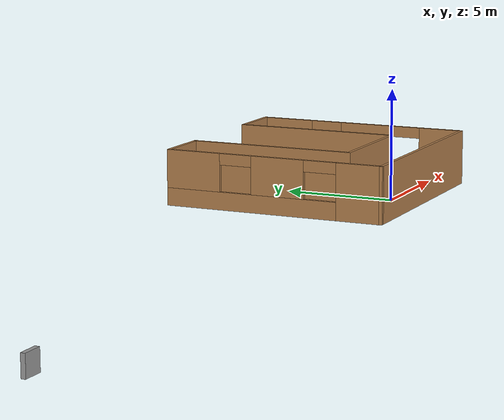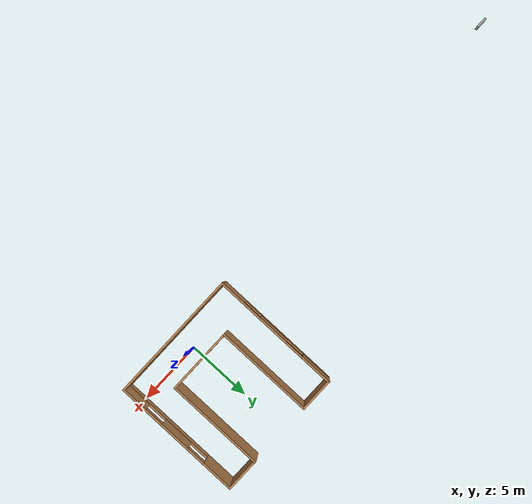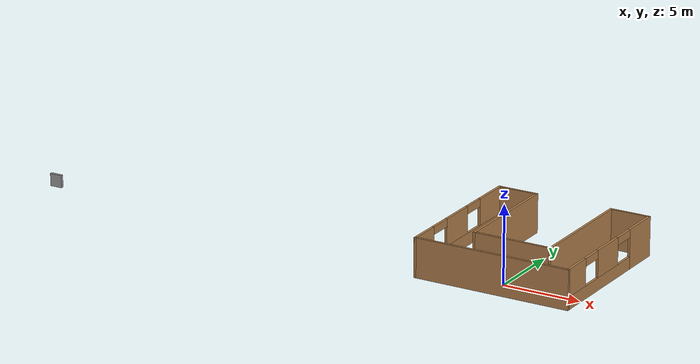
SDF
<?xml version='1.0'?>
<sdf version='1.6'>
  <model name='U-shape'>
    <pose frame=''>0 3.5 0 0 -0 0</pose>
    <link name='Wall_0'>
      <collision name='Wall_0_Collision'>
        <geometry>
          <box>
            <size>2.65 0.15 2.5</size>
          </box>
        </geometry>
        <pose frame=''>0 0 1.25 0 -0 0</pose>
      </collision>
      <visual name='Wall_0_Visual'>
        <pose frame=''>0 0 1.25 0 -0 0</pose>
        <geometry>
          <box>
            <size>2.65 0.15 2.5</size>
          </box>
        </geometry>
        <material>
          <script>
            <uri>file://media/materials/scripts/gazebo.material</uri>
            <name>Gazebo/Wood</name>
          </script>
          <ambient>1 1 1 1</ambient>
        </material>
        <meta>
          <layer>0</layer>
        </meta>
      </visual>
      <pose frame=''>-3.75 5 0 0 -0 0</pose>
    </link>
    <link name='Wall_1'>
      <collision name='Wall_1_Collision'>
        <geometry>
          <box>
            <size>7.65 0.15 2.5</size>
          </box>
        </geometry>
        <pose frame=''>0 0 1.25 0 -0 0</pose>
      </collision>
      <visual name='Wall_1_Visual'>
        <pose frame=''>0 0 1.25 0 -0 0</pose>
        <geometry>
          <box>
            <size>7.65 0.15 2.5</size>
          </box>
        </geometry>
        <material>
          <script>
            <uri>file://media/materials/scripts/gazebo.material</uri>
            <name>Gazebo/Wood</name>
          </script>
          <ambient>1 1 1 1</ambient>
        </material>
        <meta>
          <layer>0</layer>
        </meta>
      </visual>
      <pose frame=''>-2.5 1.25 0 0 0 -1.5708</pose>
    </link>
    <link name='Wall_2'>
      <collision name='Wall_2_Collision'>
        <geometry>
          <box>
            <size>5.15 0.15 2.5</size>
          </box>
        </geometry>
        <pose frame=''>0 0 1.25 0 -0 0</pose>
      </collision>
      <visual name='Wall_2_Visual'>
        <pose frame=''>0 0 1.25 0 -0 0</pose>
        <geometry>
          <box>
            <size>5.15 0.15 2.5</size>
          </box>
        </geometry>
        <material>
          <script>
            <uri>file://media/materials/scripts/gazebo.material</uri>
            <name>Gazebo/Wood</name>
          </script>
          <ambient>1 1 1 1</ambient>
        </material>
        <meta>
          <layer>0</layer>
        </meta>
      </visual>
      <pose frame=''>0 -2.5 0 0 -0 0</pose>
    </link>
    <link name='Wall_3'>
      <collision name='Wall_3_Collision'>
        <geometry>
          <box>
            <size>7.65 0.15 2.5</size>
          </box>
        </geometry>
        <pose frame=''>0 0 1.25 0 -0 0</pose>
      </collision>
      <visual name='Wall_3_Visual'>
        <pose frame=''>0 0 1.25 0 -0 0</pose>
        <geometry>
          <box>
            <size>7.65 0.15 2.5</size>
          </box>
        </geometry>
        <material>
          <script>
            <uri>file://media/materials/scripts/gazebo.material</uri>
            <name>Gazebo/Wood</name>
          </script>
          <ambient>1 1 1 1</ambient>
        </material>
        <meta>
          <layer>0</layer>
        </meta>
      </visual>
      <pose frame=''>2.5 1.25 0 0 -0 1.5708</pose>
    </link>
    <link name='Wall_4'>
      <collision name='Wall_4_Collision'>
        <geometry>
          <box>
            <size>2.65 0.15 2.5</size>
          </box>
        </geometry>
        <pose frame=''>0 0 1.25 0 -0 0</pose>
      </collision>
      <visual name='Wall_4_Visual'>
        <pose frame=''>0 0 1.25 0 -0 0</pose>
        <geometry>
          <box>
            <size>2.65 0.15 2.5</size>
          </box>
        </geometry>
        <material>
          <script>
            <uri>file://media/materials/scripts/gazebo.material</uri>
            <name>Gazebo/Wood</name>
          </script>
          <ambient>1 1 1 1</ambient>
        </material>
        <meta>
          <layer>0</layer>
        </meta>
      </visual>
      <pose frame=''>3.75 5 0 0 -0 0</pose>
    </link>
    <link name='Wall_5'>
      <pose frame=''>5 0 0 0 0 -1.5708</pose>
      <visual name='Wall_5_Visual_0'>
        <pose frame=''>-3.79245 0 1.25 0 -0 0</pose>
        <geometry>
          <box>
            <size>2.5651 0.15 2.5</size>
          </box>
        </geometry>
        <material>
          <script>
            <uri>file://media/materials/scripts/gazebo.material</uri>
            <name>Gazebo/Wood</name>
          </script>
          <ambient>1 1 1 1</ambient>
        </material>
        <meta>
          <layer>0</layer>
        </meta>
      </visual>
      <collision name='Wall_5_Collision_0'>
        <geometry>
          <box>
            <size>2.5651 0.15 2.5</size>
          </box>
        </geometry>
        <pose frame=''>-3.79245 0 1.25 0 -0 0</pose>
      </collision>
      <visual name='Wall_5_Visual_1'>
        <pose frame=''>1.28255 0 0.4 0 -0 0</pose>
        <geometry>
          <box>
            <size>7.5849 0.15 0.8</size>
          </box>
        </geometry>
        <material>
          <script>
            <uri>file://media/materials/scripts/gazebo.material</uri>
            <name>Gazebo/Wood</name>
          </script>
          <ambient>1 1 1 1</ambient>
        </material>
        <meta>
          <layer>0</layer>
        </meta>
      </visual>
      <collision name='Wall_5_Collision_1'>
        <geometry>
          <box>
            <size>7.5849 0.15 0.8</size>
          </box>
        </geometry>
        <pose frame=''>1.28255 0 0.4 0 -0 0</pose>
      </collision>
      <visual name='Wall_5_Visual_2'>
        <pose frame=''>0.228463 0 1.65 0 -0 0</pose>
        <geometry>
          <box>
            <size>2.47673 0.15 1.7</size>
          </box>
        </geometry>
        <material>
          <script>
            <uri>file://media/materials/scripts/gazebo.material</uri>
            <name>Gazebo/Wood</name>
          </script>
          <ambient>1 1 1 1</ambient>
        </material>
        <meta>
          <layer>0</layer>
        </meta>
      </visual>
      <collision name='Wall_5_Collision_2'>
        <geometry>
          <box>
            <size>2.47673 0.15 1.7</size>
          </box>
        </geometry>
        <pose frame=''>0.228463 0 1.65 0 -0 0</pose>
      </collision>
      <visual name='Wall_5_Visual_3'>
        <pose frame=''>4.02091 0 1.65 0 -0 0</pose>
        <geometry>
          <box>
            <size>2.10817 0.15 1.7</size>
          </box>
        </geometry>
        <material>
          <script>
            <uri>file://media/materials/scripts/gazebo.material</uri>
            <name>Gazebo/Wood</name>
          </script>
          <ambient>1 1 1 1</ambient>
        </material>
        <meta>
          <layer>0</layer>
        </meta>
      </visual>
      <collision name='Wall_5_Collision_3'>
        <geometry>
          <box>
            <size>2.10817 0.15 1.7</size>
          </box>
        </geometry>
        <pose frame=''>4.02091 0 1.65 0 -0 0</pose>
      </collision>
      <visual name='Wall_5_Visual_4'>
        <pose frame=''>-1.7599 0 2.25 0 -0 0</pose>
        <geometry>
          <box>
            <size>1.5 0.15 0.5</size>
          </box>
        </geometry>
        <material>
          <script>
            <uri>file://media/materials/scripts/gazebo.material</uri>
            <name>Gazebo/Wood</name>
          </script>
          <ambient>1 1 1 1</ambient>
        </material>
        <meta>
          <layer>0</layer>
        </meta>
      </visual>
      <collision name='Wall_5_Collision_4'>
        <geometry>
          <box>
            <size>1.5 0.15 0.5</size>
          </box>
        </geometry>
        <pose frame=''>-1.7599 0 2.25 0 -0 0</pose>
      </collision>
      <visual name='Wall_5_Visual_5'>
        <pose frame=''>2.21683 0 2.25 0 -0 0</pose>
        <geometry>
          <box>
            <size>1.5 0.15 0.5</size>
          </box>
        </geometry>
        <material>
          <script>
            <uri>file://media/materials/scripts/gazebo.material</uri>
            <name>Gazebo/Wood</name>
          </script>
          <ambient>1 1 1 1</ambient>
        </material>
        <meta>
          <layer>0</layer>
        </meta>
      </visual>
      <collision name='Wall_5_Collision_5'>
        <geometry>
          <box>
            <size>1.5 0.15 0.5</size>
          </box>
        </geometry>
        <pose frame=''>2.21683 0 2.25 0 -0 0</pose>
      </collision>
    </link>
    <link name='Wall_6'>
      <collision name='Wall_6_Collision'>
        <geometry>
          <box>
            <size>10.15 0.15 2.5</size>
          </box>
        </geometry>
        <pose frame=''>0 0 1.25 0 -0 0</pose>
      </collision>
      <visual name='Wall_6_Visual'>
        <pose frame=''>0 0 1.25 0 -0 0</pose>
        <geometry>
          <box>
            <size>10.15 0.15 2.5</size>
          </box>
        </geometry>
        <material>
          <script>
            <uri>file://media/materials/scripts/gazebo.material</uri>
            <name>Gazebo/Wood</name>
          </script>
          <ambient>1 1 1 1</ambient>
        </material>
        <meta>
          <layer>0</layer>
        </meta>
      </visual>
      <pose frame=''>0 -5 0 0 -0 3.14159</pose>
    </link>
    <link name='Wall_7'>
      <pose frame=''>-5 0 0 0 -0 1.5708</pose>
      <visual name='Wall_7_Visual_0'>
        <pose frame=''>-4.02091 0 1.25 0 -0 0</pose>
        <geometry>
          <box>
            <size>2.10817 0.15 2.5</size>
          </box>
        </geometry>
        <material>
          <script>
            <uri>file://media/materials/scripts/gazebo.material</uri>
            <name>Gazebo/Wood</name>
          </script>
          <ambient>1 1 1 1</ambient>
        </material>
        <meta>
          <layer>0</layer>
        </meta>
      </visual>
      <collision name='Wall_7_Collision_0'>
        <geometry>
          <box>
            <size>2.10817 0.15 2.5</size>
          </box>
        </geometry>
        <pose frame=''>-4.02091 0 1.25 0 -0 0</pose>
      </collision>
      <visual name='Wall_7_Visual_1'>
        <pose frame=''>1.05409 0 0.4 0 -0 0</pose>
        <geometry>
          <box>
            <size>8.04183 0.15 0.8</size>
          </box>
        </geometry>
        <material>
          <script>
            <uri>file://media/materials/scripts/gazebo.material</uri>
            <name>Gazebo/Wood</name>
          </script>
          <ambient>1 1 1 1</ambient>
        </material>
        <meta>
          <layer>0</layer>
        </meta>
      </visual>
      <collision name='Wall_7_Collision_1'>
        <geometry>
          <box>
            <size>8.04183 0.15 0.8</size>
          </box>
        </geometry>
        <pose frame=''>1.05409 0 0.4 0 -0 0</pose>
      </collision>
      <visual name='Wall_7_Visual_2'>
        <pose frame=''>-0.228463 0 1.65 0 -0 0</pose>
        <geometry>
          <box>
            <size>2.47673 0.15 1.7</size>
          </box>
        </geometry>
        <material>
          <script>
            <uri>file://media/materials/scripts/gazebo.material</uri>
            <name>Gazebo/Wood</name>
          </script>
          <ambient>1 1 1 1</ambient>
        </material>
        <meta>
          <layer>0</layer>
        </meta>
      </visual>
      <collision name='Wall_7_Collision_2'>
        <geometry>
          <box>
            <size>2.47673 0.15 1.7</size>
          </box>
        </geometry>
        <pose frame=''>-0.228463 0 1.65 0 -0 0</pose>
      </collision>
      <visual name='Wall_7_Visual_3'>
        <pose frame=''>3.79245 0 1.65 0 -0 0</pose>
        <geometry>
          <box>
            <size>2.5651 0.15 1.7</size>
          </box>
        </geometry>
        <material>
          <script>
            <uri>file://media/materials/scripts/gazebo.material</uri>
            <name>Gazebo/Wood</name>
          </script>
          <ambient>1 1 1 1</ambient>
        </material>
        <meta>
          <layer>0</layer>
        </meta>
      </visual>
      <collision name='Wall_7_Collision_3'>
        <geometry>
          <box>
            <size>2.5651 0.15 1.7</size>
          </box>
        </geometry>
        <pose frame=''>3.79245 0 1.65 0 -0 0</pose>
      </collision>
      <visual name='Wall_7_Visual_4'>
        <pose frame=''>-2.21683 0 2.25 0 -0 0</pose>
        <geometry>
          <box>
            <size>1.5 0.15 0.5</size>
          </box>
        </geometry>
        <material>
          <script>
            <uri>file://media/materials/scripts/gazebo.material</uri>
            <name>Gazebo/Wood</name>
          </script>
          <ambient>1 1 1 1</ambient>
        </material>
        <meta>
          <layer>0</layer>
        </meta>
      </visual>
      <collision name='Wall_7_Collision_4'>
        <geometry>
          <box>
            <size>1.5 0.15 0.5</size>
          </box>
        </geometry>
        <pose frame=''>-2.21683 0 2.25 0 -0 0</pose>
      </collision>
      <visual name='Wall_7_Visual_5'>
        <pose frame=''>1.7599 0 2.25 0 -0 0</pose>
        <geometry>
          <box>
            <size>1.5 0.15 0.5</size>
          </box>
        </geometry>
        <material>
          <script>
            <uri>file://media/materials/scripts/gazebo.material</uri>
            <name>Gazebo/Wood</name>
          </script>
          <ambient>1 1 1 1</ambient>
        </material>
        <meta>
          <layer>0</layer>
        </meta>
      </visual>
      <collision name='Wall_7_Collision_5'>
        <geometry>
          <box>
            <size>1.5 0.15 0.5</size>
          </box>
        </geometry>
        <pose frame=''>1.7599 0 2.25 0 -0 0</pose>
      </collision>
    </link>
    <link name='Window_0'>
      <collision name='Window_0_Collision'>
        <geometry>
          <box>
            <size>0.8 0.17 0.8</size>
          </box>
        </geometry>
        <pose frame=''>0 0 0.4 0 -0 0</pose>
      </collision>
      <visual name='Window_0_Visual'>
        <pose frame=''>0 0 0.4 0 -0 0</pose>
        <geometry>
          <box>
            <size>0.8 0.17 0.8</size>
          </box>
        </geometry>
        <material>
          <script>
            <uri>file://media/materials/scripts/gazebo.material</uri>
            <name>Gazebo/Grey</name>
          </script>
        </material>
      </visual>
      <pose frame=''>-30.794 -4.14401 0.5 0 -0 0</pose>
    </link>
    <static>1</static>
  </model>
</sdf>
